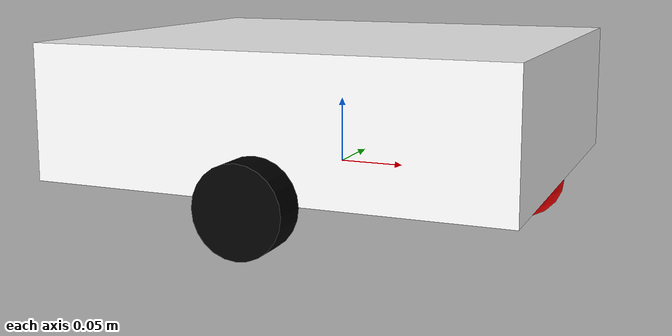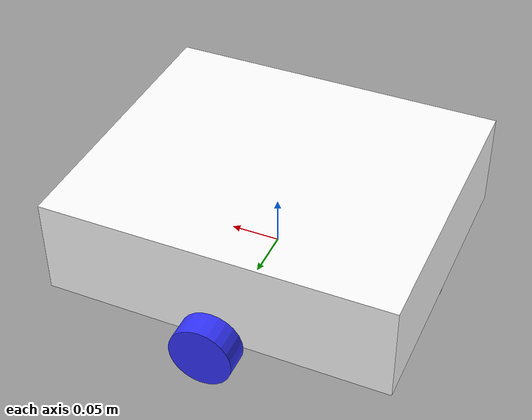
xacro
<?xml version="1.0"?>
<robot xmlns:xacro="http://www.ros.org/wiki/xacro"  name="robot">

    <xacro:include filename="inertial_macros.xacro"/>

    <material name="white">
        <color rgba="1 1 1 1"/>
    </material>
    <material name="blue">
        <color rgba="0.2 0.2 1 1"/>
    </material>
    <material name="black">
        <color rgba="0 0 0 1"/>
    </material>
    <material name="red">
        <color rgba="1 0 0 1"/>
    </material>

    <!-- BASE LINK -->
    <link name="base_link">
    </link>

    <!-- CHASSIS LINK -->
    <joint name="chassis_joint" type="fixed">
        <parent link="base_link"/>
        <child link="chassis"/>
        <origin xyz="-0.175 0 0"/>
    </joint>

    <link name="chassis">
        <visual>
            <origin xyz="0.175 0 0.05"/>
            <geometry>
                <box size="0.35 0.3 0.1"/>
            </geometry>
            <material name="white"/>
        </visual>
        <collision>
            <origin xyz="0.175 0 0.05"/>
            <geometry>
                <box size="0.35 0.3 0.1"/>
            </geometry>
        </collision>
        <xacro:inertial_box mass="0.5" x="0.35" y="0.3" z="0.1">
            <origin xyz="0.175 0 0.05" rpy="0 0 0"/>
        </xacro:inertial_box>
    </link>

    <gazebo reference="chassis">
        <material>Gazebo/White</material>
    </gazebo>

    <!-- LEFT WHEEL LINK -->

    <joint name="left_wheel_joint" type="continuous">
        <parent link="base_link"/>
        <child link="left_wheel"/>
        <origin xyz="0 0.165 0" rpy="-${pi/2} 0 0" />
        <axis xyz="0 0 1"/>
    </joint>

    <link name="left_wheel">
        <visual>
            <geometry>
                <cylinder radius="0.032" length="0.0265"/>
            </geometry>
            <material name="blue"/>
        </visual>
        <collision>
            <geometry>
                <cylinder radius="0.032" length="0.0265"/>
            </geometry>
        </collision>
        <xacro:inertial_cylinder mass="0.1" length="0.0265" radius="0.032">
            <origin xyz="0 0 0" rpy="0 0 0"/>
        </xacro:inertial_cylinder>
    </link>

    <gazebo reference="left_wheel">
        <material>Gazebo/Blue</material>
    </gazebo>

    <!-- RIGHT WHEEL LINK -->

    <joint name="right_wheel_joint" type="continuous">
        <parent link="base_link"/>
        <child link="right_wheel"/>
        <origin xyz="0 -0.165 0" rpy="${pi/2} 0 0" />
        <axis xyz="0 0 -1"/>
    </joint>

    <link name="right_wheel">
        <visual>
            <geometry>
                <cylinder radius="0.032" length="0.0265"/>
            </geometry>
            <material name="black"/>
        </visual>
        <collision>
            <geometry>
                <cylinder radius="0.032" length="0.0265"/>
            </geometry>
        </collision>
        <xacro:inertial_cylinder mass="0.1" length="0.0265" radius="0.032">
            <origin xyz="0 0 0" rpy="0 0 0"/>
        </xacro:inertial_cylinder>
    </link>

    <gazebo reference="right_wheel">
        <material>Gazebo/Black</material>
    </gazebo>

    <!-- CASTER FRONT WHEEL LINK -->

    <joint name="caster_front_wheel_joint" type="fixed">
        <parent link="chassis"/>
        <child link="caster_front_wheel"/>
        <origin xyz="0.03 0 0"/>
    </joint>

    <link name="caster_front_wheel">
        <visual>
            <geometry>
                <sphere radius="0.03"/>
            </geometry>
            <material name="white"/>
        </visual>
        <collision>
            <geometry>
                <sphere radius="0.03"/>
            </geometry>
        </collision>
        <xacro:inertial_sphere mass="0.1" radius="0.03">
            <origin xyz="0 0 0" rpy="0 0 0"/>
        </xacro:inertial_sphere>
    </link>

    <gazebo reference="caster_front_wheel">
        <material>Gazebo/White</material>
        <mu1 value="0.001"/>
        <mu2 value="0.001"/>
    </gazebo>

    <!-- CASTER BACK WHEEL LINK -->

    <joint name="caster_back_wheel_joint" type="fixed">
        <parent link="chassis"/>
        <child link="caster_back_wheel"/>
        <origin xyz="0.32 0 0"/>
    </joint>

    <link name="caster_back_wheel">
        <visual>
            <geometry>
                <sphere radius="0.03"/>
            </geometry>
            <material name="red"/>
        </visual>
        <collision>
            <geometry>
                <sphere radius="0.03"/>
            </geometry>
        </collision>
        <xacro:inertial_sphere mass="0.1" radius="0.03">
            <origin xyz="0 0 0" rpy="0 0 0"/>
        </xacro:inertial_sphere>
    </link>

    <gazebo reference="caster_back_wheel">
        <material>Gazebo/Red</material>
        <mu1 value="0.001"/>
        <mu2 value="0.001"/>
    </gazebo>

</robot>
